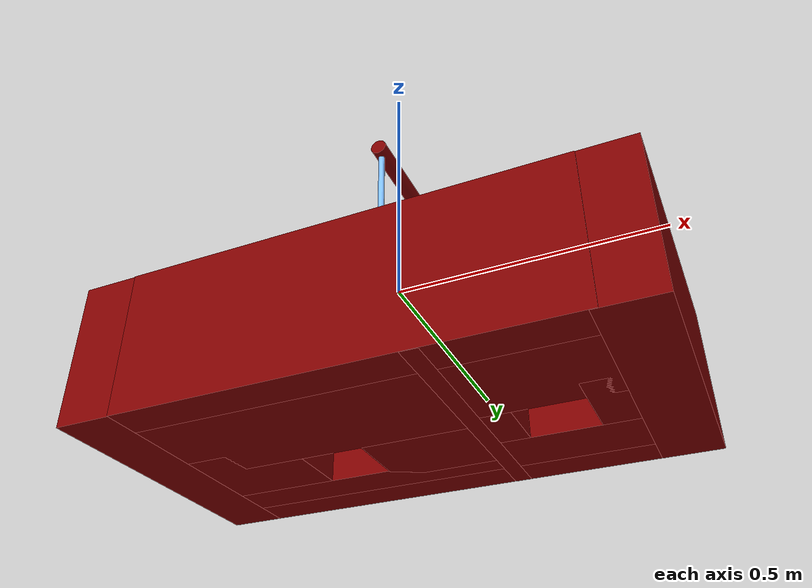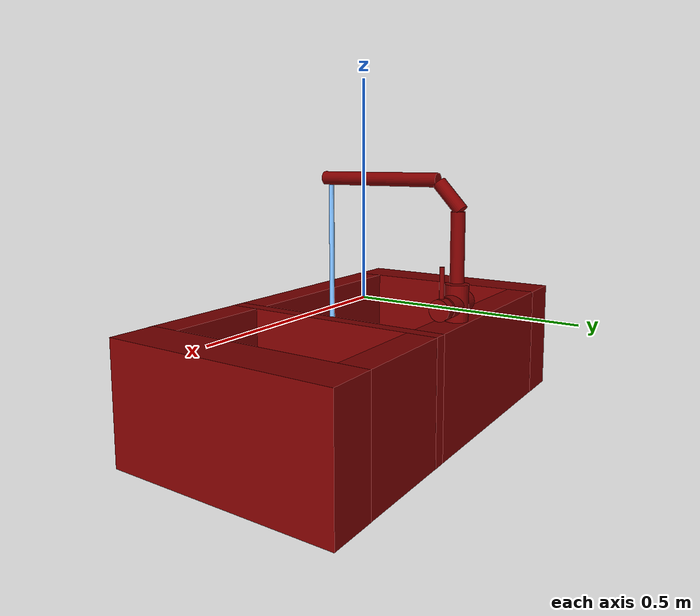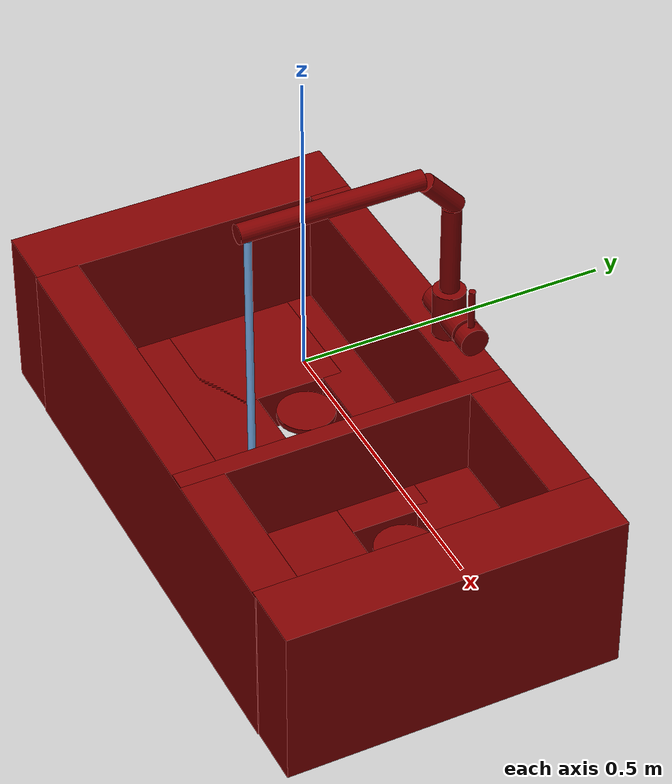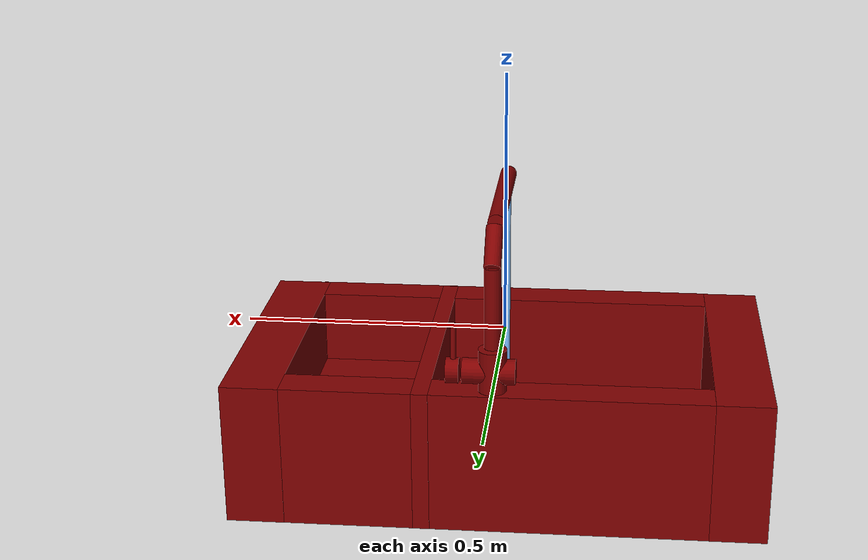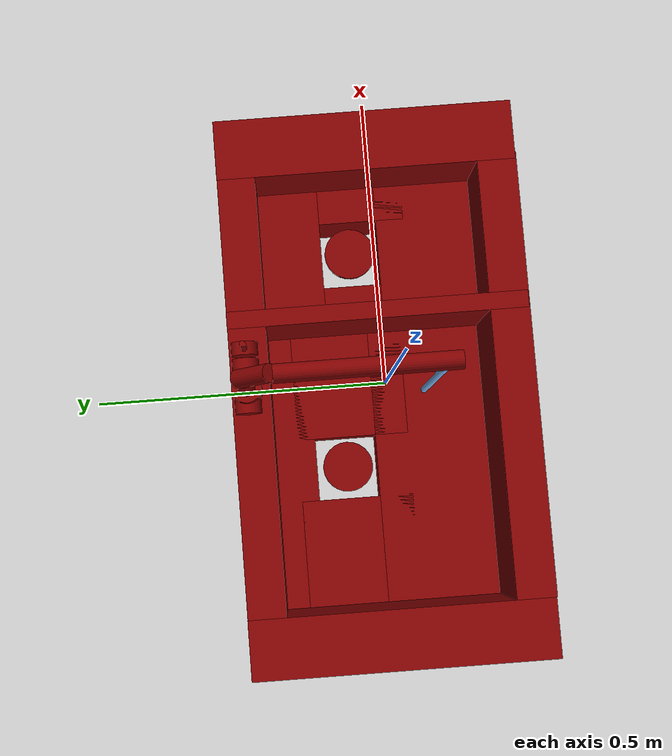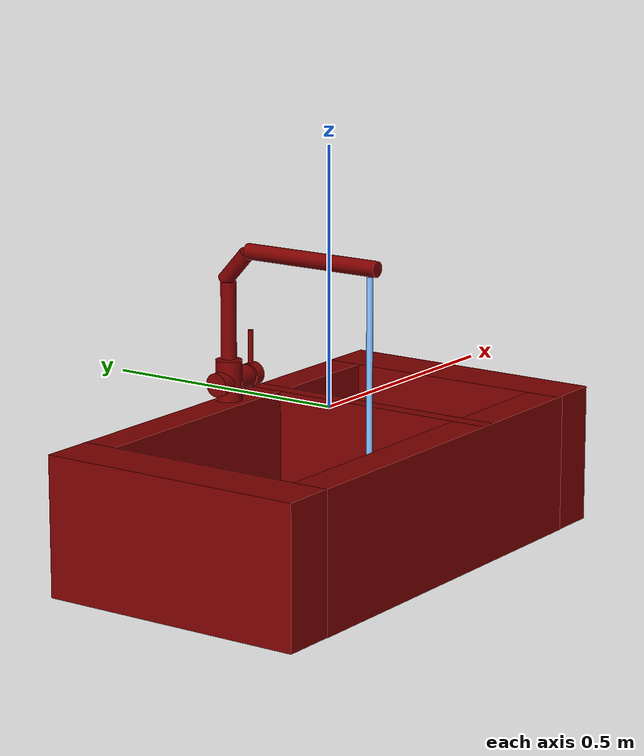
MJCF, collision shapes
<mujoco model="model">
  <compiler angle="radian"/>
  <asset>
    <mesh file="visuals/handle.obj" name="handle_vis"/>
    <mesh file="visuals/Body001.obj" name="Body001_vis"/>
    <mesh file="visuals/Funnel001.obj" name="Funnel001_vis"/>
    <mesh file="visuals/Funnel002.obj" name="Funnel002_vis"/>
    <mesh file="visuals/spout.obj" name="spout_vis"/>
    <texture file="visuals/T_BC001.png" name="Body001_material" type="2d"/>
    <material name="Body001_material" rgba="1 1 1 1.0" texture="Body001_material" shininess="4" specular="0.3103448502657381"/>
    <texture file="visuals/T_BC001.png" name="handle_material" type="2d"/>
    <material name="handle_material" rgba="1 1 1 1.0" texture="handle_material" shininess="0.4472135901451111" specular="0.3103448502657381"/>
    <texture file="visuals/T_BC001.png" name="Funnel001_material" type="2d"/>
    <material name="Funnel001_material" rgba="1 1 1 1.0" texture="Funnel001_material" shininess="0.4472135901451111" specular="0.3103448502657381"/>
    <texture file="visuals/T_BC001.png" name="Funnel002_material" type="2d"/>
    <material name="Funnel002_material" rgba="1 1 1 1.0" texture="Funnel002_material" shininess="0.4472135901451111" specular="0.3103448502657381"/>
    <texture file="visuals/T_BC001.png" name="spout_material" type="2d"/>
    <material name="spout_material" rgba="1 1 1 1.0" texture="spout_material" shininess="0.4472135901451111" specular="0.3103448502657381"/>
  </asset>
  <default>
    <default class="visual">
      <geom conaffinity="0" contype="0" group="1" type="mesh"/>
    </default>
    <default class="collision">
      <geom group="0" rgba="0.5 0 0 0.5"/>
    </default>
    <default class="spawn">
      <geom group="0" rgba="1 1 1 0.5" contype="0" conaffinity="0"/>
      <site group="0" rgba="1 1 1 0.5"/>
    </default>
    <default class="region">
      <geom group="1" conaffinity="0" contype="0" rgba="0 1 0 0"/>
    </default>
  </default>
  <worldbody>
    <body>
      <body name="object">
        <geom mesh="Body001_vis" type="mesh" solimp="0.998 0.998 0.001" solref="0.001 1" density="100" friction="0.95 0.3 0.1" class="visual" material="Body001_material"/>
        <geom class="collision" type="box" pos="0.44490739703178406 8.320649612869602e-06 -0.15951959788799286" size="0.05394463241100311 0.26998060941696167 0.13586075603961945" quat="1.0 0.0 0.0 0.0"/>
        <geom class="collision" type="box" pos="0.13497641682624817 8.320649612869602e-06 -0.15951959788799286" size="0.015448926016688347 0.26998060941696167 0.13586066663265228" quat="1.0 0.0 0.0 0.0"/>
        <geom class="collision" type="box" pos="-0.4456612169742584 8.320649612869602e-06 -0.15951959788799286" size="0.052929267287254333 0.26998060941696167 0.13586056232452393" quat="1.0 0.0 0.0 0.0"/>
        <geom class="collision" type="box" pos="0.00511576235294342 0.2356141358613968 -0.15951959788799286" size="0.39849328994750977 0.03402973711490631 0.13586045801639557" quat="1.0 0.0 0.0 0.0"/>
        <geom class="collision" type="box" pos="0.00511576235294342 -0.2358454316854477 -0.15951959788799286" size="0.39849328994750977 0.035470228642225266 0.1358603537082672" quat="1.0 0.0 0.0 0.0"/>
        <geom class="collision" type="box" pos="0.27088895440101624 0.1554613560438156 -0.23214276134967804" size="0.13272012770175934 0.06721878796815872 0.06323675811290741" quat="1.0 0.0 0.0 0.0"/>
        <geom class="collision" type="box" pos="-0.13731065392494202 0.17433403432369232 -0.2600456476211548" size="0.26114073395729065 0.04834610968828201 0.03533375635743141" quat="1.0 0.0 0.0 0.0"/>
        <geom class="collision" type="cylinder" pos="0.005185093265026808 0.2406271994113922 0.01755271852016449" size="0.025999147444963455 0.03984614834189415" quat="1.0 0.0 0.0 0.0"/>
        <geom class="collision" type="cylinder" pos="0.011538419872522354 0.2406271994113922 0.014286486431956291" size="0.023298535495996475 0.04807014390826225" quat="0.7071068286895752 -0.0 0.7071067690849304 0.0"/>
        <geom class="collision" type="box" pos="0.27088895440101624 -0.11058247089385986 -0.23214276134967804" size="0.13272012770175934 0.09090840071439743 0.06323671340942383" quat="1.0 0.0 0.0 0.0"/>
        <geom class="collision" type="box" pos="0.36521443724632263 0.019035816192626953 -0.23214276134967804" size="0.038394637405872345 0.09090840071439743 0.06323669105768204" quat="1.0 0.0 0.0 0.0"/>
        <geom class="collision" type="box" pos="0.17092370986938477 0.019035816192626953 -0.23214276134967804" size="0.03275487944483757 0.09090840071439743 0.06323667615652084" quat="1.0 0.0 0.0 0.0"/>
        <geom class="collision" type="box" pos="-0.13731065392494202 -0.0949554592370987 -0.2600456476211548" size="0.26114073395729065 0.10541987419128418 0.03533371910452843" quat="1.0 0.0 0.0 0.0"/>
        <geom class="collision" type="box" pos="-0.29601746797561646 0.053624242544174194 -0.2600456476211548" size="0.10243391990661621 0.10541987419128418 0.03533370792865753" quat="1.0 0.0 0.0 0.0"/>
        <geom class="collision" type="box" pos="0.026035640388727188 0.053624242544174194 -0.2600456476211548" size="0.10243391990661621 0.10541987419128418 0.035333696752786636" quat="1.0 0.0 0.0 0.0"/>
        <body name="handle">
          <joint axis="1.0 0.0 0.0" pos="0.07748483121395111 0.24036787450313568 0.013886529952287674" limited="true" name="handle_joint_hinge_0" type="hinge" range="-0.7853981633974483 0.7853981633974483" damping="1" frictionloss="1" armature=".01" stiffness="0.05"/>
          <joint axis="0.0 1.0 0.0" pos="0.07748483121395111 0.24036787450313568 0.013886529952287674" limited="true" name="handle_joint_hinge_1" type="hinge" range="0.0 0.17453292519943295" damping="1" frictionloss="1" armature=".01" stiffness="0.05"/>
          <geom mesh="handle_vis" type="mesh" solimp="0.998 0.998 0.001" solref="0.001 1" density="100" friction="0.95 0.3 0.1" class="visual" material="handle_material"/>
          <geom class="collision" type="cylinder" pos="0.07706256955862045 0.2406271994113922 0.014286485500633717" size="0.023298535495996475 0.011870143003761768" quat="0.7071068286895752 -0.0 0.7071067690849304 0.0"/>
          <geom class="collision" type="cylinder" pos="0.07541844248771667 0.24037644267082214 0.07029133290052414" size="0.005322720855474472 0.03310320898890495" quat="1.0 0.0 0.0 0.0"/>
        </body>
        <body name="Funnel001">
          <joint axis="0.0 0.0 1.0" pos="-0.13260863721370697 0.06802153587341309 -0.22976170480251312" limited="true" name="Funnel001_joint" range="0.0 0.1" type="slide" damping="1" frictionloss="1" armature=".01" stiffness="0.05"/>
          <geom mesh="Funnel001_vis" type="mesh" solimp="0.998 0.998 0.001" solref="0.001 1" density="100" friction="0.95 0.3 0.1" class="visual" material="Funnel001_material"/>
          <geom class="collision" type="cylinder" pos="-0.1333034187555313 0.06709596514701843 -0.22862716019153595" size="0.04711330682039261 0.004616770427674055" quat="1.0 0.0 0.0 0.0"/>
        </body>
        <body name="Funnel002">
          <joint axis="0.0 0.0 1.0" pos="0.2657068073749542 0.034747980535030365 -0.17403414845466614" limited="true" name="Funnel002_joint" range="0.0 0.1" type="slide" damping="1" frictionloss="1" armature=".01" stiffness="0.05"/>
          <geom mesh="Funnel002_vis" type="mesh" solimp="0.998 0.998 0.001" solref="0.001 1" density="100" friction="0.95 0.3 0.1" class="visual" material="Funnel002_material"/>
          <geom class="collision" type="cylinder" pos="0.26580342650413513 0.03479287773370743 -0.17118839919567108" size="0.04711330682039261 0.004104908090084791" quat="1.0 0.0 0.0 0.0"/>
        </body>
        <body name="spout">
          <joint axis="0.0 0.0 1.0" pos="0.005331031978130341 0.24036547541618347 0.17518110573291779" limited="true" name="spout_joint" range="-0.7853981633974483 0.7853981633974483" type="hinge" damping="1" frictionloss="1" armature=".01" stiffness="0.05"/>
          <site type="cylinder" rgba="0.5 0.75 1 1" size="0.006065879482775927 0.2522731423377991" pos="0.002885363297536969 -0.08968469500541687 0.008711956441402435" name="water"/>
          <geom mesh="spout_vis" type="mesh" solimp="0.998 0.998 0.001" solref="0.001 1" density="100" friction="0.95 0.3 0.1" class="visual" material="spout_material"/>
          <geom class="collision" type="cylinder" pos="0.005185116082429886 0.2406271994113922 0.13624829053878784" size="0.015406545251607895 0.07598001509904861" quat="1.0 0.0 0.0 0.0"/>
          <geom class="collision" type="cylinder" pos="0.005185093730688095 0.22179937362670898 0.24264395236968994" size="0.015406537801027298 0.039024557918310165" quat="0.9324918389320374 0.3611910045146942 0.0 0.0"/>
          <geom class="collision" type="cylinder" pos="0.002925414592027664 0.04243505746126175 0.2771749794483185" size="0.015406545251607895 0.14869332313537598" quat="0.7071067094802856 0.70710688829422 0.0 0.0"/>
        </body>
        <geom class="region" name="reg_main" type="box" pos="7.450580596923828e-09 0.0 -0.15891602635383606" size="0.4972216486930847 0.2693639397621155 0.13248325884342194"/>
        <geom class="region" name="reg_basin_left" type="box" pos="-0.13887064158916473 -0.0014788955450057983 -0.12538104876875877" size="0.2529975026845932 0.19745725393295288 0.09281239286065102"/>
        <geom class="region" name="reg_basin_right" type="box" pos="0.2704359367489815 -0.0013459324836730957 -0.09887975826859474" size="0.11610736697912216 0.19759021699428558 0.06631110236048698"/>
      </body>
    </body>
  </worldbody>
  <actuator>
    <motor name="handle_joint_hinge_0_actuator" joint="handle_joint_hinge_0" gear="10"/>
    <motor name="handle_joint_hinge_1_actuator" joint="handle_joint_hinge_1" gear="10"/>
    <motor name="Funnel001_joint_actuator" joint="Funnel001_joint" gear="10"/>
    <motor name="Funnel002_joint_actuator" joint="Funnel002_joint" gear="10"/>
    <motor name="spout_joint_actuator" joint="spout_joint" gear="10"/>
  </actuator>
</mujoco>
